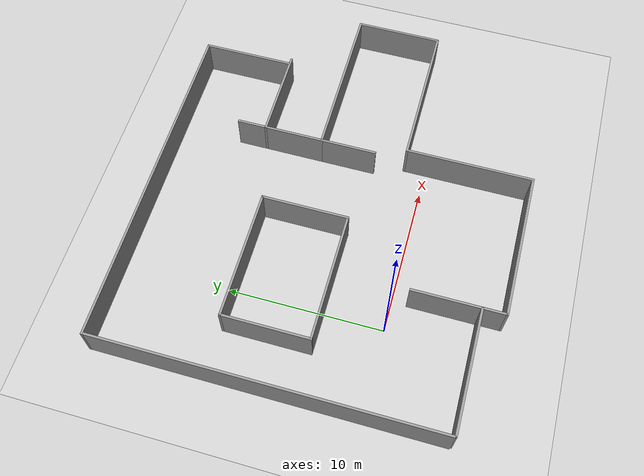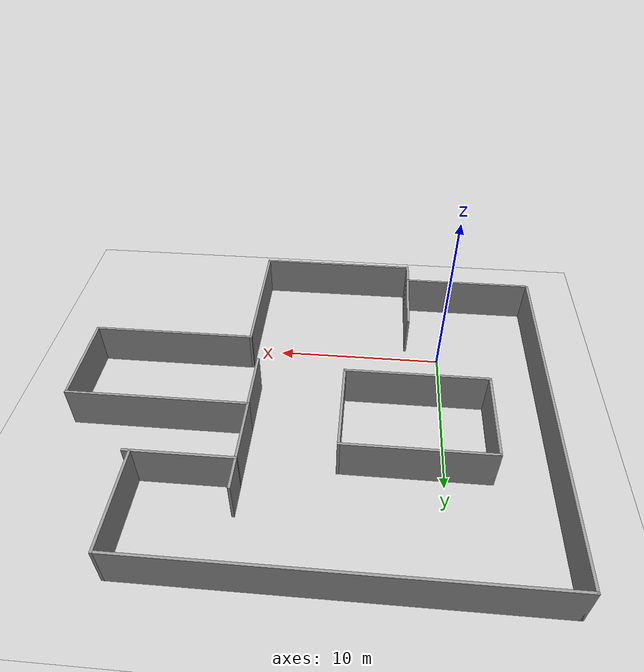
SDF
<sdf version="1.7">
 <world name="default">
  <light name="sun" type="directional">
   <pose>0 0 10 0 -0 0</pose>
   <diffuse>0.8 0.8 0.8 1</diffuse>
   <specular>0.2 0.2 0.2 1</specular>
   <attenuation>
    <range>1000</range>
    <constant>0.9</constant>
    <linear>0.01</linear>
    <quadratic>0.001</quadratic>
   </attenuation>
   <direction>-0.5 0.1 -0.9</direction>
   <spot><inner_angle>0</inner_angle><outer_angle>0</outer_angle><falloff>0</falloff></spot>
  </light>
  <model name="ground_plane">
   <static>1</static>
   <link name="link">
    <collision name="collision">
     <geometry><plane><normal>0 0 1</normal><size>100 100</size></plane></geometry>
     <surface>
      <contact><collide_bitmask>65535</collide_bitmask></contact>
      <friction><ode><mu>100</mu><mu2>50</mu2></ode></friction>
     </surface>
    </collision>
    <visual name="visual">
     <cast_shadows>0</cast_shadows>
     <geometry><plane><normal>0 0 1</normal><size>100 100</size></plane></geometry>
     <material>
      <script><uri>file://media/materials/scripts/gazebo.material</uri><name>Gazebo/Grey</name></script>
     </material>
    </visual>
   </link>
  </model>
  <gravity>0 0 -9.8</gravity>
  <magnetic_field>6e-06 2.3e-05 -4.2e-05</magnetic_field>
  <atmosphere type="adiabatic"/>
  <physics type="ode">
   <max_step_size>0.001</max_step_size>
   <real_time_factor>1</real_time_factor>
   <real_time_update_rate>1000</real_time_update_rate>
  </physics>
  <scene><ambient>0.4 0.4 0.4 1</ambient><background>0.7 0.7 0.7 1</background><shadows>1</shadows></scene>
  <spherical_coordinates>
   <surface_model>EARTH_WGS84</surface_model>
   <latitude_deg>0</latitude_deg>
   <longitude_deg>0</longitude_deg>
   <elevation>0</elevation>
   <heading_deg>0</heading_deg>
  </spherical_coordinates>
  <model name="Untitled">
   <model name="KOrytarz">
    <pose>-5e-06 -5e-06 0 0 -0 0</pose>
    <link name="Wall_0">
     <collision name="Wall_0_Collision">
      <geometry><box><size>8 0.15 2.5</size></box></geometry>
      <pose>0 0 1.25 0 -0 0</pose>
     </collision>
     <visual name="Wall_0_Visual">
      <pose>0 0 1.25 0 -0 0</pose>
      <geometry><box><size>8 0.15 2.5</size></box></geometry>
      <material>
       <script><uri>file://media/materials/scripts/gazebo.material</uri><name>Gazebo/Grey</name></script>
       <ambient>1 1 1 1</ambient>
      </material>
      <meta><layer>0</layer></meta>
     </visual>
     <pose>-9.57888 -10.3488 0 0 -0 0</pose>
    </link>
    <link name="Wall_10">
     <collision name="Wall_10_Collision">
      <geometry><box><size>8.44039 0.15 2.5</size></box></geometry>
      <pose>0 0 1.25 0 -0 0</pose>
     </collision>
     <visual name="Wall_10_Visual">
      <pose>0 0 1.25 0 -0 0</pose>
      <geometry><box><size>8.44039 0.15 2.5</size></box></geometry>
      <material>
       <script><uri>file://media/materials/scripts/gazebo.material</uri><name>Gazebo/Grey</name></script>
       <ambient>1 1 1 1</ambient>
      </material>
      <meta><layer>0</layer></meta>
     </visual>
     <pose>3.98029 -7.69923 0 0 -0 -1.5708</pose>
    </link>
    <link name="Wall_12">
     <collision name="Wall_12_Collision">
      <geometry><box><size>9.75 0.15 2.5</size></box></geometry>
      <pose>0 0 1.25 0 -0 0</pose>
     </collision>
     <visual name="Wall_12_Visual">
      <pose>0 0 1.25 0 -0 0</pose>
      <geometry><box><size>9.75 0.15 2.5</size></box></geometry>
      <material>
       <script><uri>file://media/materials/scripts/gazebo.material</uri><name>Gazebo/Grey</name></script>
       <ambient>1 1 1 1</ambient>
      </material>
      <meta><layer>0</layer></meta>
     </visual>
     <pose>-0.854693 -11.8444 0 0 -0 3.14159</pose>
    </link>
    <link name="Wall_13">
     <collision name="Wall_13_Collision">
      <geometry><box><size>6 0.15 2.5</size></box></geometry>
      <pose>0 0 1.25 0 -0 0</pose>
     </collision>
     <visual name="Wall_13_Visual">
      <pose>0 0 1.25 0 -0 0</pose>
      <geometry><box><size>6 0.15 2.5</size></box></geometry>
      <material>
       <script><uri>file://media/materials/scripts/gazebo.material</uri><name>Gazebo/Grey</name></script>
       <ambient>1 1 1 1</ambient>
      </material>
      <meta><layer>0</layer></meta>
     </visual>
     <pose>-5.65469 -8.91939 0 0 -0 1.5708</pose>
    </link>
    <link name="Wall_15">
     <collision name="Wall_15_Collision">
      <geometry><box><size>3.75 0.15 2.5</size></box></geometry>
      <pose>0 0 1.25 0 -0 0</pose>
     </collision>
     <visual name="Wall_15_Visual">
      <pose>0 0 1.25 0 -0 0</pose>
      <geometry><box><size>3.75 0.15 2.5</size></box></geometry>
      <material>
       <script><uri>file://media/materials/scripts/gazebo.material</uri><name>Gazebo/Grey</name></script>
       <ambient>1 1 1 1</ambient>
      </material>
      <meta><layer>0</layer></meta>
     </visual>
     <pose>3.23029 0.245927 0 0 -0 -1.5708</pose>
    </link>
    <link name="Wall_17">
     <collision name="Wall_17_Collision">
      <geometry><box><size>5.75 0.15 2.5</size></box></geometry>
      <pose>0 0 1.25 0 -0 0</pose>
     </collision>
     <visual name="Wall_17_Visual">
      <pose>0 0 1.25 0 -0 0</pose>
      <geometry><box><size>5.75 0.15 2.5</size></box></geometry>
      <material>
       <script><uri>file://media/materials/scripts/gazebo.material</uri><name>Gazebo/Grey</name></script>
       <ambient>1 1 1 1</ambient>
      </material>
      <meta><layer>0</layer></meta>
     </visual>
     <pose>-10.2852 1.68861 0 0 -0 -1.5708</pose>
    </link>
    <link name="Wall_18">
     <collision name="Wall_18_Collision">
      <geometry><box><size>8.5 0.15 2.5</size></box></geometry>
      <pose>0 0 1.25 0 -0 0</pose>
     </collision>
     <visual name="Wall_18_Visual">
      <pose>0 0 1.25 0 -0 0</pose>
      <geometry><box><size>8.5 0.15 2.5</size></box></geometry>
      <material>
       <script><uri>file://media/materials/scripts/gazebo.material</uri><name>Gazebo/Grey</name></script>
       <ambient>1 1 1 1</ambient>
      </material>
      <meta><layer>0</layer></meta>
     </visual>
     <pose>-6.1102 -1.11139 0 0 -0 0</pose>
    </link>
    <link name="Wall_19">
     <collision name="Wall_19_Collision">
      <geometry><box><size>5.75 0.15 2.5</size></box></geometry>
      <pose>0 0 1.25 0 -0 0</pose>
     </collision>
     <visual name="Wall_19_Visual">
      <pose>0 0 1.25 0 -0 0</pose>
      <geometry><box><size>5.75 0.15 2.5</size></box></geometry>
      <material>
       <script><uri>file://media/materials/scripts/gazebo.material</uri><name>Gazebo/Grey</name></script>
       <ambient>1 1 1 1</ambient>
      </material>
      <meta><layer>0</layer></meta>
     </visual>
     <pose>-1.9352 1.68861 0 0 -0 1.5708</pose>
    </link>
    <link name="Wall_20">
     <collision name="Wall_20_Collision">
      <geometry><box><size>8.5 0.15 2.5</size></box></geometry>
      <pose>0 0 1.25 0 -0 0</pose>
     </collision>
     <visual name="Wall_20_Visual">
      <pose>0 0 1.25 0 -0 0</pose>
      <geometry><box><size>8.5 0.15 2.5</size></box></geometry>
      <material>
       <script><uri>file://media/materials/scripts/gazebo.material</uri><name>Gazebo/Grey</name></script>
       <ambient>1 1 1 1</ambient>
      </material>
      <meta><layer>0</layer></meta>
     </visual>
     <pose>-6.1102 4.48861 0 0 -0 3.14159</pose>
    </link>
    <link name="Wall_22">
     <collision name="Wall_22_Collision">
      <geometry><box><size>2 0.15 2.5</size></box></geometry>
      <pose>0 0 1.25 0 -0 0</pose>
     </collision>
     <visual name="Wall_22_Visual">
      <pose>0 0 1.25 0 -0 0</pose>
      <geometry><box><size>2 0.15 2.5</size></box></geometry>
      <material>
       <script><uri>file://media/materials/scripts/gazebo.material</uri><name>Gazebo/Grey</name></script>
       <ambient>1 1 1 1</ambient>
      </material>
      <meta><layer>0</layer></meta>
     </visual>
     <pose>3.23029 6.82093 0 0 -0 1.5708</pose>
    </link>
    <link name="Wall_26">
     <collision name="Wall_26_Collision">
      <geometry><box><size>6 0.15 2.5</size></box></geometry>
      <pose>0 0 1.25 0 -0 0</pose>
     </collision>
     <visual name="Wall_26_Visual">
      <pose>0 0 1.25 0 -0 0</pose>
      <geometry><box><size>6 0.15 2.5</size></box></geometry>
      <material>
       <script><uri>file://media/materials/scripts/gazebo.material</uri><name>Gazebo/Grey</name></script>
       <ambient>1 1 1 1</ambient>
      </material>
      <meta><layer>0</layer></meta>
     </visual>
     <pose>8.76971 8.91943 0 0 -0 1.5708</pose>
    </link>
    <link name="Wall_28">
     <collision name="Wall_28_Collision">
      <geometry><box><size>22.5 0.15 2.5</size></box></geometry>
      <pose>0 0 1.25 0 -0 0</pose>
     </collision>
     <visual name="Wall_28_Visual">
      <pose>0 0 1.25 0 -0 0</pose>
      <geometry><box><size>22.5 0.15 2.5</size></box></geometry>
      <material>
       <script><uri>file://media/materials/scripts/gazebo.material</uri><name>Gazebo/Grey</name></script>
       <ambient>1 1 1 1</ambient>
      </material>
      <meta><layer>0</layer></meta>
     </visual>
     <pose>-2.40529 11.8444 0 0 -0 3.14159</pose>
    </link>
    <link name="Wall_29">
     <collision name="Wall_29_Collision">
      <geometry><box><size>22.25 0.15 2.5</size></box></geometry>
      <pose>0 0 1.25 0 -0 0</pose>
     </collision>
     <visual name="Wall_29_Visual">
      <pose>0 0 1.25 0 -0 0</pose>
      <geometry><box><size>22.25 0.15 2.5</size></box></geometry>
      <material>
       <script><uri>file://media/materials/scripts/gazebo.material</uri><name>Gazebo/Grey</name></script>
       <ambient>1 1 1 1</ambient>
      </material>
      <meta><layer>0</layer></meta>
     </visual>
     <pose>-13.5803 0.794427 0 0 -0 -1.5708</pose>
    </link>
    <link name="Wall_5">
     <collision name="Wall_5_Collision">
      <geometry><box><size>6.05829 0.15 2.5</size></box></geometry>
      <pose>0 0 1.25 0 -0 0</pose>
     </collision>
     <visual name="Wall_5_Visual">
      <pose>0 0 1.25 0 -0 0</pose>
      <geometry><box><size>6.05829 0.15 2.5</size></box></geometry>
      <material>
       <script><uri>file://media/materials/scripts/gazebo.material</uri><name>Gazebo/Grey</name></script>
       <ambient>1 1 1 1</ambient>
      </material>
      <meta><layer>0</layer></meta>
     </visual>
     <pose>6.18443 5.89593 0 0 -0 3.14159</pose>
    </link>
    <link name="Wall_6">
     <collision name="Wall_6_Collision">
      <geometry><box><size>4 0.15 2.5</size></box></geometry>
      <pose>0 0 1.25 0 -0 0</pose>
     </collision>
     <visual name="Wall_6_Visual">
      <pose>0 0 1.25 0 -0 0</pose>
      <geometry><box><size>4 0.15 2.5</size></box></geometry>
      <material>
       <script><uri>file://media/materials/scripts/gazebo.material</uri><name>Gazebo/Grey</name></script>
       <ambient>1 1 1 1</ambient>
      </material>
      <meta><layer>0</layer></meta>
     </visual>
     <pose>3.23029 3.97093 0 0 -0 -1.5708</pose>
    </link>
    <link name="Wall_7">
     <collision name="Wall_7_Collision">
      <geometry><box><size>10.5 0.15 2.5</size></box></geometry>
      <pose>0 0 1.25 0 -0 0</pose>
     </collision>
     <visual name="Wall_7_Visual">
      <pose>0 0 1.25 0 -0 0</pose>
      <geometry><box><size>10.5 0.15 2.5</size></box></geometry>
      <material>
       <script><uri>file://media/materials/scripts/gazebo.material</uri><name>Gazebo/Grey</name></script>
       <ambient>1 1 1 1</ambient>
      </material>
      <meta><layer>0</layer></meta>
     </visual>
     <pose>8.40529 2.04593 0 0 -0 0</pose>
    </link>
    <link name="Wall_8">
     <collision name="Wall_8_Collision">
      <geometry><box><size>5.75 0.15 2.5</size></box></geometry>
      <pose>0 0 1.25 0 -0 0</pose>
     </collision>
     <visual name="Wall_8_Visual">
      <pose>0 0 1.25 0 -0 0</pose>
      <geometry><box><size>5.75 0.15 2.5</size></box></geometry>
      <material>
       <script><uri>file://media/materials/scripts/gazebo.material</uri><name>Gazebo/Grey</name></script>
       <ambient>1 1 1 1</ambient>
      </material>
      <meta><layer>0</layer></meta>
     </visual>
     <pose>13.5803 -0.754073 0 0 -0 -1.5708</pose>
    </link>
    <link name="Wall_9">
     <collision name="Wall_9_Collision">
      <geometry><box><size>9.75 0.15 2.5</size></box></geometry>
      <pose>0 0 1.25 0 -0 0</pose>
     </collision>
     <visual name="Wall_9_Visual">
      <pose>0 0 1.25 0 -0 0</pose>
      <geometry><box><size>9.75 0.15 2.5</size></box></geometry>
      <material>
       <script><uri>file://media/materials/scripts/gazebo.material</uri><name>Gazebo/Grey</name></script>
       <ambient>1 1 1 1</ambient>
      </material>
      <meta><layer>0</layer></meta>
     </visual>
     <pose>8.78029 -3.55407 0 0 -0 3.14159</pose>
    </link>
    <static>1</static>
   </model>
   <static>0</static>
   <pose>7.70333 4.99962 0 0 -0 0</pose>
  </model>
 </world>
</sdf>
